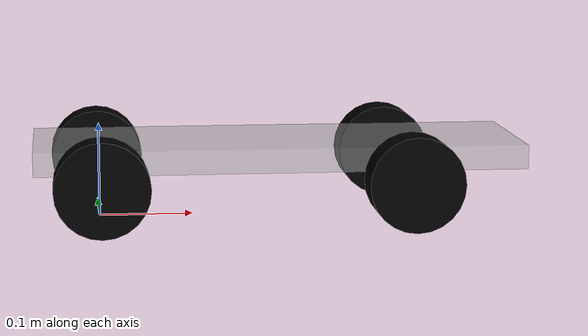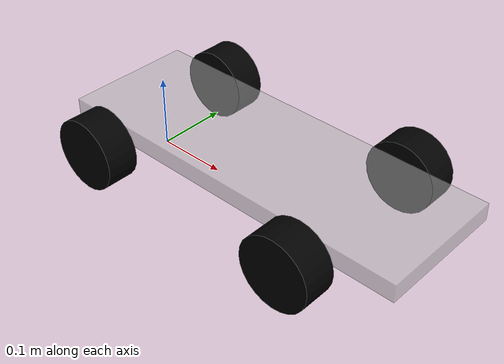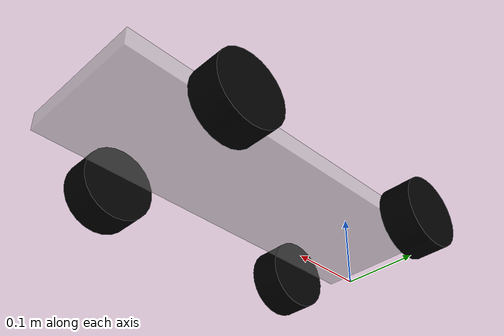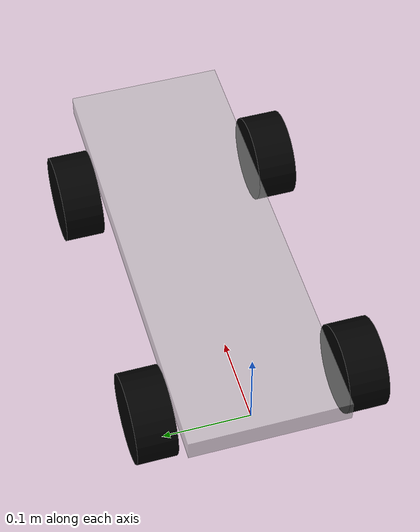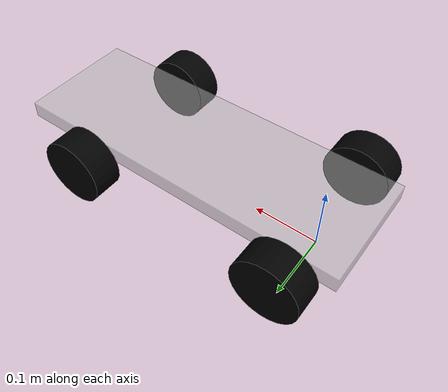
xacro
<?xml version="1.0"?>
<robot xmlns:xacro="http://ros.org/wiki/xacro">

  <xacro:property name="car_name" value="ego_racecar" />
  <xacro:property name="wheel_track" value="0.235" />     <!-- 윤거 -->
  <xacro:property name="wheel_base" value="0.324" />      <!-- 축거 -->
  <xacro:property name="wheel_radius" value="0.05" />     <!-- 바퀴 반지름 -->
  <xacro:property name="wheel_length" value="0.045" />    <!-- 바퀴 두께 -->

  <material name="Black">
    <color rgba="0.0 0.0 0.0 1.0"/>
  </material>
  <material name="Gray">
    <color rgba="0.7 0.7 0.7 0.5"/>
  </material>
  <material name="Blue">
    <color rgba="0 0 1.0 1.0"/>
  </material>
  <material name="Red">
    <color rgba="1.0 0 0 1.0"/>
  </material>

  <link name="${car_name}/base_link">
    <visual name="visual">
      <origin xyz="0.19 0 0.07" rpy="0 0 3.14" />
      <geometry>
        <box size="0.52 0.18 0.025"/>
      </geometry>
      <material name="Gray"/>
    </visual>
  </link>

  <xacro:macro name="wheel" params="prefix suffix x y z pitch yaw">
    <link name="${car_name}/${prefix}_${suffix}_wheel">
      <visual>
        <origin xyz="${x} ${y} ${z}" rpy="1.5707 ${pitch} ${yaw}" />
        <geometry>
            <cylinder radius="${wheel_radius}" length="${wheel_length}" />
        </geometry>
        <material name="Black"/>
      </visual>
    </link>
  </xacro:macro>

  <xacro:macro name="front_hinge" params="subfix">
    <link name="${car_name}/front_${subfix}_hinge">
    </link>
  </xacro:macro>

  <xacro:macro name="front_hinge_joint" params="subfix x y z">
    <joint name="front_${subfix}_hinge_joint" type="fixed">
      <parent link="${car_name}/base_link"/>
      <child link="${car_name}/front_${subfix}_hinge"/>
      <origin xyz="${x} ${y} ${z}" />
    </joint>
  </xacro:macro>

  <xacro:macro name="front_wheel_joint" params="subfix x y z">
    <joint name="front_${subfix}_wheel_joint" type="continuous">
      <axis xyz="0 1 0" />
      <parent link="${car_name}/front_${subfix}_hinge"/>
      <child link="${car_name}/front_${subfix}_wheel"/>
      <origin xyz="${x} ${y} ${z}" />
    </joint>
  </xacro:macro>

  <xacro:macro name="back_wheel_joint" params="subfix x y z">
    <joint name="back_${subfix}_wheel_joint" type="fixed">
      <parent link="${car_name}/base_link"/>
      <child link="${car_name}/back_${subfix}_wheel"/>
      <origin xyz="${x} ${y} ${z}" />
    </joint>
  </xacro:macro>

  <xacro:wheel prefix="front" suffix="right" x="0" y="0" z="0" pitch="0" yaw="0"/>
  <xacro:wheel prefix="front" suffix="left" x="0" y="0" z="0" pitch="3.1414" yaw="0"/>
  <xacro:wheel prefix="back" suffix="right" x="0" y="0" z="0" pitch="0" yaw="0"/>
  <xacro:wheel prefix="back" suffix="left" x="0" y="0" z="0" pitch="3.1414" yaw="0"/>

  <xacro:front_hinge subfix="right"/>
  <xacro:front_hinge subfix="left"/>

  <xacro:front_hinge_joint subfix="right" x="${wheel_base}" y="${-wheel_track/2}" z="${wheel_radius}"/>
  <xacro:front_hinge_joint subfix="left" x="${wheel_base}" y="${wheel_track/2}" z="${wheel_radius}"/>

  <xacro:front_wheel_joint subfix="right" x="0" y="0" z="0.0"/>
  <xacro:front_wheel_joint subfix="left" x="0." y="0" z="0.0"/>
  <xacro:back_wheel_joint subfix="right" x="0." y="${-wheel_track/2}" z="${wheel_radius}"/>
  <xacro:back_wheel_joint subfix="left" x="0.0" y="${wheel_track/2}" z="${wheel_radius}"/>

</robot>
